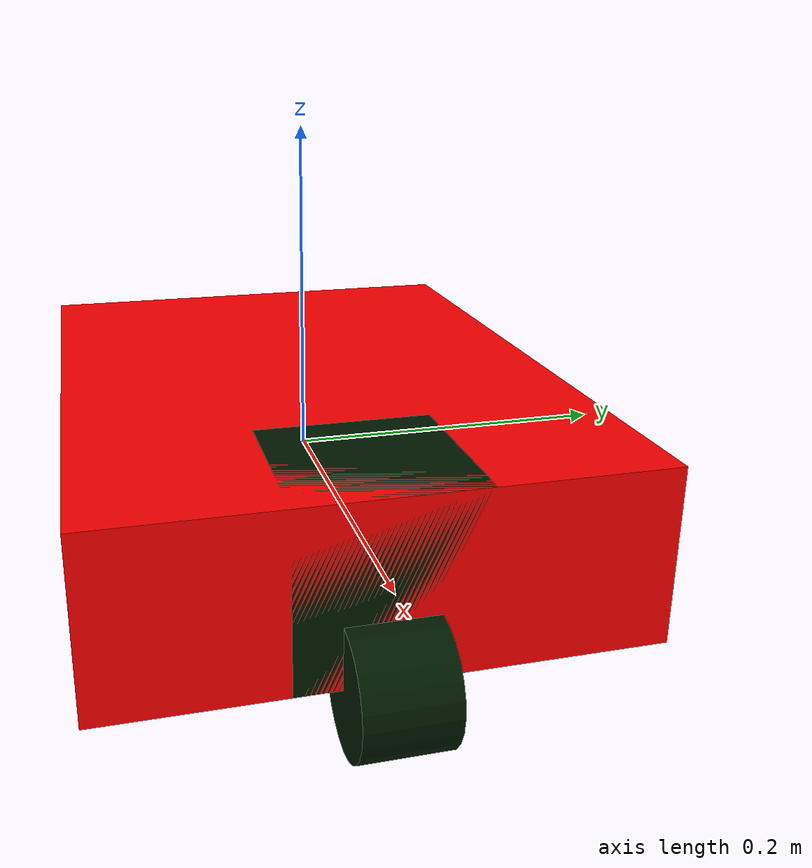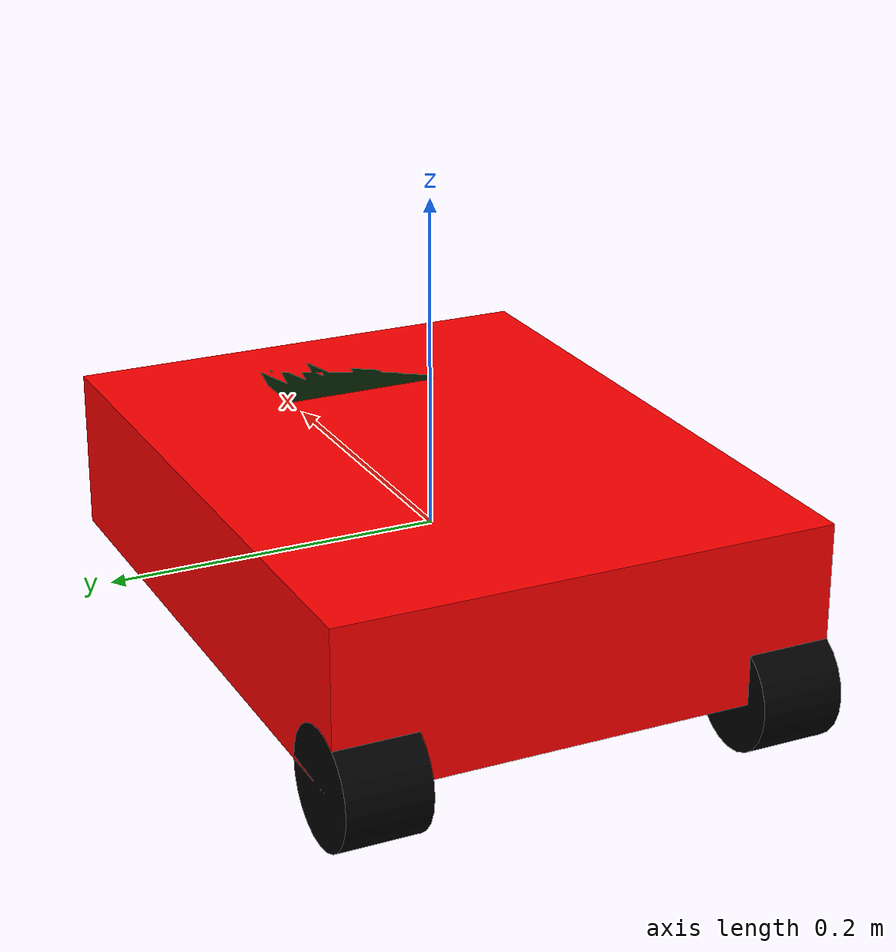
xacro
<?xml version="1.0"?>
<robot xmlns:xacro="http://www.ros.org/wiki/xacro" name="$(arg robot_name)">

    <link name="base_link">
        <visual>
            <geometry>
                <box size="0.4 0.3 0.1"/>
            </geometry>
            <material name="red">
                <color rgba="1 0.0 0.0 1"/>
            </material>
        </visual>

        <collision>
            <geometry>
                <box size="0.4 0.3 0.1"/>
            </geometry>
        </collision>

        <inertial>
            <mass value="1.0"/>
            <inertia ixx="0.015" ixy="0" ixz="0" iyy="0.0375" iyz="0.0" izz="0.0375"/>
        </inertial>
    </link>

    <link name="front_caster_of_wheel">
        <visual>
            <geometry>
                <box size="0.1 0.1 0.1"/>
            </geometry>
            <material name="green">
                <color rgba="0.0 0.1 0.0 1"/>
            </material>
        </visual>

        <collision>
            <geometry>
                <box size="0.1 0.1 0.1"/>
            </geometry>
        </collision>

        <inertial>
            <mass value="0.1"/>
            <inertia ixx="0.00083" ixy="0" ixz="0" iyy="0.00083" iyz="0.0" izz="0.000167"/>
        </inertial>
    </link>

    <joint name="front_caster_of_wheel_joint" type="fixed"> <!-- continuous -->
        <axis xyz="0.0 0.0 1"/>
        <parent link="base_link"/>
        <child link="front_caster_of_wheel"/>
        <origin xyz="0.15 0.0 0.0" rpy="0.0 0.0 0.0"/>
    </joint>

    <link name="front_wheel">
        <visual>
            <geometry>
                <cylinder radius="0.035" length="0.05"/>
            </geometry>
            <material name="black">
                <color rgba="0.0 0.1 0.0 1"/>
            </material>
        </visual>

        <collision>
            <geometry>
                <cylinder radius="0.035" length="0.05"/>
            </geometry>
        </collision>

        <inertial>
            <mass value="0.1"/>
            <inertia ixx="5.1458e-5" ixy="0" ixz="0" iyy="5.1458e-5" iyz="0.0" izz="6.125e-5"/>
        </inertial>
    </link>

    <joint name="front_wheel_joint" type="fixed">  <!-- continuous -->
        <axis xyz="0.0 0.0 1"/>
        <parent link="front_caster_of_wheel"/>
        <child link="front_wheel"/>
        <origin xyz="0.05 0.0 -0.05" rpy="-1.5708 0.0 0.0"/>
    </joint>

    <link name="right_wheel">
        <visual>
            <geometry>
                <cylinder radius="0.035" length="0.05"/>
            </geometry>
            <material name="black">
                <color rgba="0.0 0.0 0.0 1"/>
            </material>
        </visual>

        <collision>
            <geometry>
                <cylinder radius="0.035" length="0.05"/>
            </geometry>
        </collision>

        <inertial>
            <mass value="0.1"/>
            <inertia ixx="5.1458e-5" ixy="0" ixz="0" iyy="5.1458e-5" iyz="0.0" izz="6.125e-5"/>
        </inertial>
    </link>

    <joint name="right_wheel_joint" type="continuous">
        <axis xyz="0.0 0.0 1"/>
        <parent link="base_link"/>
        <child link="right_wheel"/>
        <origin xyz="-0.1825 -0.125 -0.05" rpy="-1.5708 0.0 0.0"/>
    </joint>

    <link name="left_wheel">
        <visual>
            <geometry>
                <cylinder radius="0.035" length="0.05"/>
            </geometry>
            <material name="black">
                <color rgba="0.0 0.0 0.0 1"/>
            </material>
        </visual>

        <collision>
            <geometry>
                <cylinder radius="0.035" length="0.05"/>
            </geometry>
        </collision>

        <inertial>
            <mass value="0.1"/>
            <inertia ixx="5.1458e-5" ixy="0" ixz="0" iyy="5.1458e-5" iyz="0.0" izz="6.125e-5"/>
        </inertial>
    </link>

    <joint name="left_wheel_joint" type="continuous">
        <axis xyz="0.0 0.0 1"/>
        <parent link="base_link"/>
        <child link="left_wheel"/>
        <origin xyz="-0.1825 0.125 -0.05" rpy="-1.5708 0.0 0.0"/>
    </joint>

    <gazebo>
        <plugin name="differential_drive_controller"
            filename="libgazebo_ros_diff_drive.so">
            <legacyMode>false</legacyMode>
            <alwaysOn>true</alwaysOn>
            <updateRate>20</updateRate>
            <leftJoint>left_wheel_joint</leftJoint>
            <rightJoint>right_wheel_joint</rightJoint>
            <robotBaseFrame>base_link</robotBaseFrame>
            <wheelSeparation>0.25</wheelSeparation>
            <wheelDiameter>0.07</wheelDiameter>
            <wheelTorque>0.1</wheelTorque>
            <commandTopic>cmd_vel</commandTopic>
            <odometryTopic>odom</odometryTopic>
            <odometryFrame>odom</odometryFrame>
            <publishWheelJointState>true</publishWheelJointState>
            <publishOdomTF>true</publishOdomTF>
        </plugin>
    </gazebo>

    <gazebo reference="base_link">
        <sensor type="ray" name="head_hokuyo_sensor">
            <pose>-0.18 0 0 0 0 0</pose>
            <visualize>true</visualize>
            <update_rate>40</update_rate>
            <ray>
                <scan>
                    <horizontal>
                        <samples>2</samples>
                        <resolution>1</resolution>
                        <min_angle>-0.31</min_angle>
                        <max_angle>0.31</max_angle>
                    </horizontal>
                </scan>
                <range>
                    <min>0.5</min>
                    <max>1.35</max>
                    <resolution>0.01</resolution>
                </range>
                <noise>
                    <type>gaussian</type>
                    <mean>0.0</mean>
                    <stddev>0.01</stddev>
                </noise>
            </ray>
            <plugin name="gazebo_ros_head_hokuyo_controller" filename="libgazebo_ros_laser.so">
                <topicName>LaserScan</topicName>
                <frameName>laser_scanner</frameName>
            </plugin>
        </sensor>
    </gazebo>

    <gazebo reference="base_link">
        <material value="Gazebo/$(arg color)"/>
        <mu1>0.0</mu1>
        <mu2>0.0</mu2>
    </gazebo>

    <gazebo reference="front_wheel">
        <material>Gazebo/Black</material>
        <mu1>0.0</mu1>
        <mu2>0.0</mu2>
        <selfCollide>false</selfCollide>
    </gazebo>

    <gazebo reference="right_wheel">
        <material>Gazebo/Black</material>
    </gazebo>

    <gazebo reference="left_wheel">
        <material>Gazebo/Black</material>
    </gazebo>

    <gazebo>
        <plugin name="gazebo_ros_control" filename="libgazebo_ros_control.so">
            <controlPeriod>0.001</controlPeriod>
            <legacyModeNS>false</legacyModeNS>
        </plugin>
    </gazebo>

</robot>
